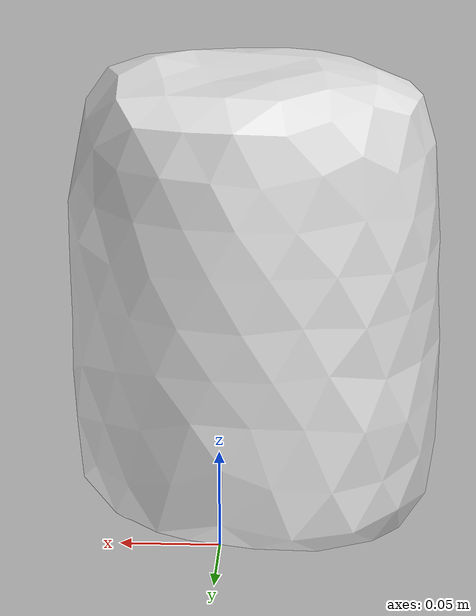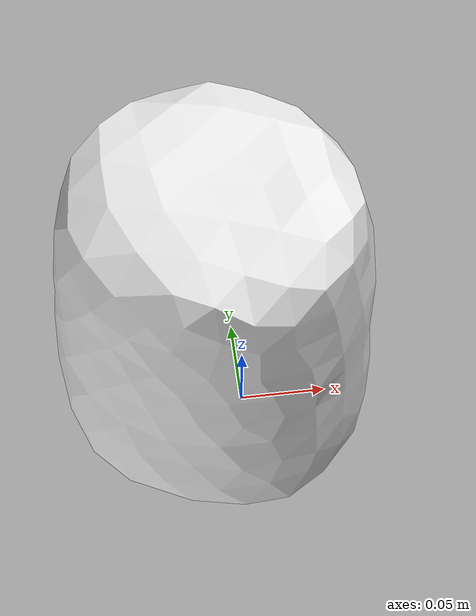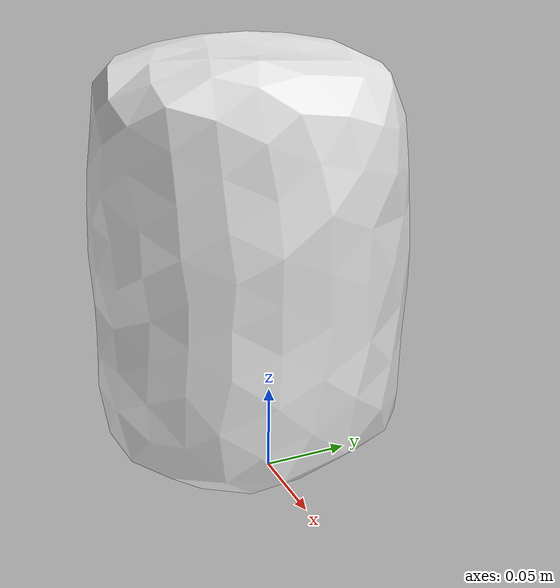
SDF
<?xml version="1.0" ?><sdf version="1.5"><model name="maisels-barrel2">
<link name="link">
<pose>0 0 0 0 0 0</pose>
<inertial>
<pose>-0.017412 -0.0068245 0.128187 0 0 0</pose>
<mass>0.535</mass>
<inertia>
<ixx>0.00383935</ixx>
<ixy>0</ixy><iyy>0.00391365</iyy>
<ixz>0</ixz><iyz>0</iyz><izz>0.00283103</izz>
</inertia>
</inertial>
<visual name="visual">
<pose>0 0 0 0 0 0</pose>
<geometry><mesh><uri>model://maisels-barrel2/meshes/maisels-barrel2.dae</uri></mesh></geometry>
<material><script><uri>file://media/materials/scripts/gazebo.material</uri><name>Gazebo/WhiteGlow</name></script></material></visual>
<collision name="collision"><pose>0 0 0 0 0 0</pose><geometry><mesh><uri>model://maisels-barrel2/meshes/maisels-barrel2.dae</uri></mesh></geometry>
<surface><friction><ode><mu>1.000000</mu><mu2>1.000000</mu2></ode></friction></surface>
</collision></link></model></sdf>
